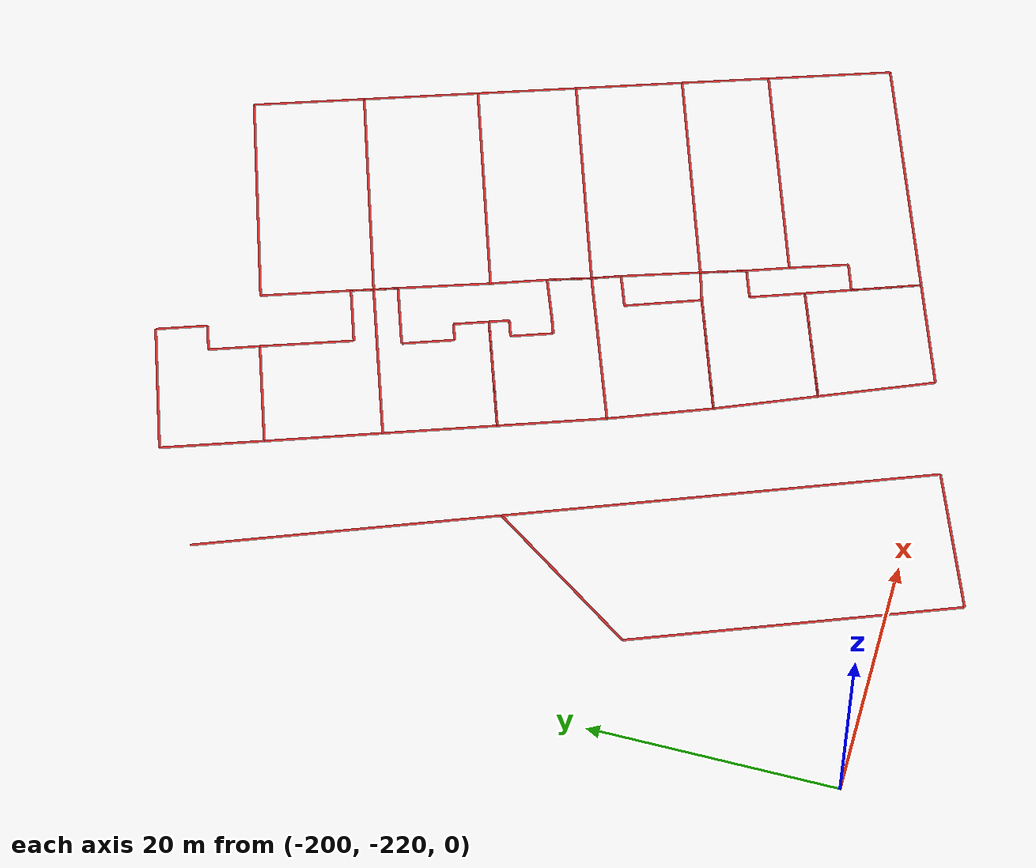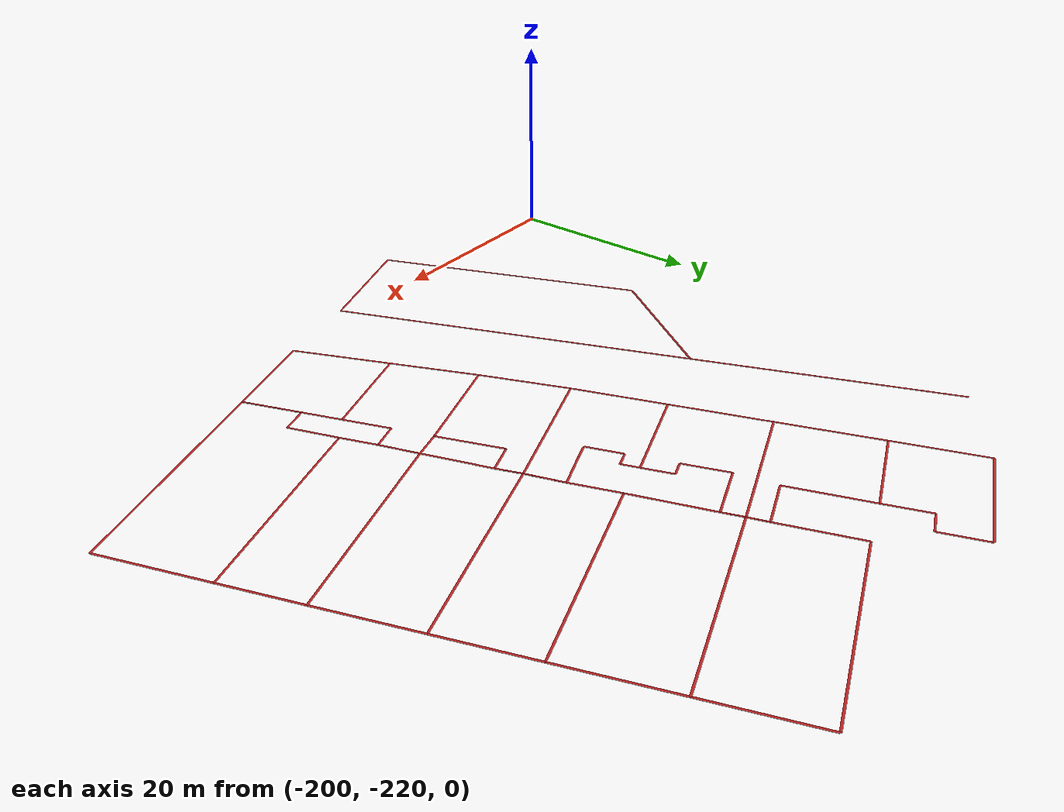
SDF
<sdf version="1.4">
 <world name="default">
  <include><uri>model://sun</uri></include>
  <model name="office_building_179269114">
   <static>true</static>
   <pose>-158.58759804 -211.600286094 0.0 0 0 0</pose>
   <link name="office_building_179269114_0">
    <collision name="office_building_179269114_0">
     <geometry><box><size>3.80377451925 0.2 0</size></box></geometry>
    </collision>
    <visual name="office_building_179269114_0">
     <geometry><box><size>3.80377451925 0.2 0</size></box></geometry>
     <material>
      <script><uri>file://media/materials/scripts/gazebo.material</uri><name>Gazebo/Red</name></script>
     </material>
    </visual>
    <pose>2.38501756788 2.86616251197 0 0 0 1.91679554039</pose>
   </link>
   <link name="office_building_179269114_1">
    <collision name="office_building_179269114_1">
     <geometry><box><size>5.71281149033 0.2 0</size></box></geometry>
    </collision>
    <visual name="office_building_179269114_1">
     <geometry><box><size>5.71281149033 0.2 0</size></box></geometry>
     <material>
      <script><uri>file://media/materials/scripts/gazebo.material</uri><name>Gazebo/Red</name></script>
     </material>
    </visual>
    <pose>4.00307972414 -1.60856797545 0 0 0 1.91841472612</pose>
   </link>
   <link name="office_building_179269114_2">
    <collision name="office_building_179269114_2">
     <geometry><box><size>9.4047843546 0.2 0</size></box></geometry>
    </collision>
    <visual name="office_building_179269114_2">
     <geometry><box><size>9.4047843546 0.2 0</size></box></geometry>
     <material>
      <script><uri>file://media/materials/scripts/gazebo.material</uri><name>Gazebo/Red</name></script>
     </material>
    </visual>
    <pose>0.545087686913 -5.86836891203 0 0 0 0.341367101498</pose>
   </link>
   <link name="office_building_179269114_3">
    <collision name="office_building_179269114_3">
     <geometry><box><size>9.54408434097 0.2 0</size></box></geometry>
    </collision>
    <visual name="office_building_179269114_3">
     <geometry><box><size>9.54408434097 0.2 0</size></box></geometry>
     <material>
      <script><uri>file://media/materials/scripts/gazebo.material</uri><name>Gazebo/Red</name></script>
     </material>
    </visual>
    <pose>-5.74309724983 -3.04677035066 0 0 0 -1.17106704474</pose>
   </link>
   <link name="office_building_179269114_4">
    <collision name="office_building_179269114_4">
     <geometry><box><size>9.90815662971 0.2 0</size></box></geometry>
    </collision>
    <visual name="office_building_179269114_4">
     <geometry><box><size>9.90815662971 0.2 0</size></box></geometry>
     <material>
      <script><uri>file://media/materials/scripts/gazebo.material</uri><name>Gazebo/Red</name></script>
     </material>
    </visual>
    <pose>-2.9301052548 3.00220640006 0 0 0 -2.8013762319</pose>
   </link>
  </model>
  <model name="office_building_179269113">
   <static>true</static>
   <pose>-146.258646722 -206.858492764 0.0 0 0 0</pose>
   <link name="office_building_179269113_0">
    <collision name="office_building_179269113_0">
     <geometry><box><size>10.2420200023 0.2 0</size></box></geometry>
    </collision>
    <visual name="office_building_179269113_0">
     <geometry><box><size>10.2420200023 0.2 0</size></box></geometry>
     <material>
      <script><uri>file://media/materials/scripts/gazebo.material</uri><name>Gazebo/Red</name></script>
     </material>
    </visual>
    <pose>11.2440742816 3.00155296333 0 0 0 1.89685270975</pose>
   </link>
   <link name="office_building_179269113_1">
    <collision name="office_building_179269113_1">
     <geometry><box><size>21.4752521521 0.2 0</size></box></geometry>
    </collision>
    <visual name="office_building_179269113_1">
     <geometry><box><size>21.4752521521 0.2 0</size></box></geometry>
     <material>
      <script><uri>file://media/materials/scripts/gazebo.material</uri><name>Gazebo/Red</name></script>
     </material>
    </visual>
    <pose>2.76578696284 -5.44278088781 0 0 0 0.341212890991</pose>
   </link>
   <link name="office_building_179269113_2">
    <collision name="office_building_179269113_2">
     <geometry><box><size>5.71281149033 0.2 0</size></box></geometry>
    </collision>
    <visual name="office_building_179269113_2">
     <geometry><box><size>5.71281149033 0.2 0</size></box></geometry>
     <material>
      <script><uri>file://media/materials/scripts/gazebo.material</uri><name>Gazebo/Red</name></script>
     </material>
    </visual>
    <pose>-8.32587159376 -6.35036130552 0 0 0 -1.22317792747</pose>
   </link>
   <link name="office_building_179269113_3">
    <collision name="office_building_179269113_3">
     <geometry><box><size>2.48809712996 0.2 0</size></box></geometry>
    </collision>
    <visual name="office_building_179269113_3">
     <geometry><box><size>2.48809712996 0.2 0</size></box></geometry>
     <material>
      <script><uri>file://media/materials/scripts/gazebo.material</uri><name>Gazebo/Red</name></script>
     </material>
    </visual>
    <pose>-8.12028304189 -3.26676211245 0 0 0 -2.81590645425</pose>
   </link>
   <link name="office_building_179269113_4">
    <collision name="office_building_179269113_4">
     <geometry><box><size>4.83956922077 0.2 0</size></box></geometry>
    </collision>
    <visual name="office_building_179269113_4">
     <geometry><box><size>4.83956922077 0.2 0</size></box></geometry>
     <material>
      <script><uri>file://media/materials/scripts/gazebo.material</uri><name>Gazebo/Red</name></script>
     </material>
    </visual>
    <pose>-7.72008526671 -0.577567519549 0 0 0 -1.2432683721</pose>
   </link>
   <link name="office_building_179269113_5">
    <collision name="office_building_179269113_5">
     <geometry><box><size>19.1149884492 0.2 0</size></box></geometry>
    </collision>
    <visual name="office_building_179269113_5">
     <geometry><box><size>19.1149884492 0.2 0</size></box></geometry>
     <material>
      <script><uri>file://media/materials/scripts/gazebo.material</uri><name>Gazebo/Red</name></script>
     </material>
    </visual>
    <pose>0.552613500159 4.78316713852 0 0 0 -2.81462751221</pose>
   </link>
  </model>
  <model name="office_building_179269112">
   <static>true</static>
   <pose>-160.410153428 -202.563512606 0.0 0 0 0</pose>
   <link name="office_building_179269112_0">
    <collision name="office_building_179269112_0">
     <geometry><box><size>2.69141899852 0.2 0</size></box></geometry>
    </collision>
    <visual name="office_building_179269112_0">
     <geometry><box><size>2.69141899852 0.2 0</size></box></geometry>
     <material>
      <script><uri>file://media/materials/scripts/gazebo.material</uri><name>Gazebo/Red</name></script>
     </material>
    </visual>
    <pose>2.02776983042 3.91911020143 0 0 0 -2.8524490779</pose>
   </link>
   <link name="office_building_179269112_1">
    <collision name="office_building_179269112_1">
     <geometry><box><size>3.76744716678 0.2 0</size></box></geometry>
    </collision>
    <visual name="office_building_179269112_1">
     <geometry><box><size>3.76744716678 0.2 0</size></box></geometry>
     <material>
      <script><uri>file://media/materials/scripts/gazebo.material</uri><name>Gazebo/Red</name></script>
     </material>
    </visual>
    <pose>3.89589713339 2.51004929694 0 0 0 1.88282280425</pose>
   </link>
   <link name="office_building_179269112_2">
    <collision name="office_building_179269112_2">
     <geometry><box><size>2.59086109966 0.2 0</size></box></geometry>
    </collision>
    <visual name="office_building_179269112_2">
     <geometry><box><size>2.59086109966 0.2 0</size></box></geometry>
     <material>
      <script><uri>file://media/materials/scripts/gazebo.material</uri><name>Gazebo/Red</name></script>
     </material>
    </visual>
    <pose>3.25104932531 0.290555016918 0 0 0 0.335679847231</pose>
   </link>
   <link name="office_building_179269112_3">
    <collision name="office_building_179269112_3">
     <geometry><box><size>4.5141329338 0.2 0</size></box></geometry>
    </collision>
    <visual name="office_building_179269112_3">
     <geometry><box><size>4.5141329338 0.2 0</size></box></geometry>
     <material>
      <script><uri>file://media/materials/scripts/gazebo.material</uri><name>Gazebo/Red</name></script>
     </material>
    </visual>
    <pose>2.79524705038 -2.25880470491 0 0 0 1.91767707317</pose>
   </link>
   <link name="office_building_179269112_4">
    <collision name="office_building_179269112_4">
     <geometry><box><size>9.90815662971 0.2 0</size></box></geometry>
    </collision>
    <visual name="office_building_179269112_4">
     <geometry><box><size>9.90815662971 0.2 0</size></box></geometry>
     <material>
      <script><uri>file://media/materials/scripts/gazebo.material</uri><name>Gazebo/Red</name></script>
     </material>
    </visual>
    <pose>-1.10754986639 -6.03456708746 0 0 0 0.340216421693</pose>
   </link>
   <link name="office_building_179269112_5">
    <collision name="office_building_179269112_5">
     <geometry><box><size>8.47237428882 0.2 0</size></box></geometry>
    </collision>
    <visual name="office_building_179269112_5">
     <geometry><box><size>8.47237428882 0.2 0</size></box></geometry>
     <material>
      <script><uri>file://media/materials/scripts/gazebo.material</uri><name>Gazebo/Red</name></script>
     </material>
    </visual>
    <pose>-7.42906704178 -3.78665068325 0 0 0 -1.17034894597</pose>
   </link>
   <link name="office_building_179269112_6">
    <collision name="office_building_179269112_6">
     <geometry><box><size>10.3973058498 0.2 0</size></box></geometry>
    </collision>
    <visual name="office_building_179269112_6">
     <geometry><box><size>10.3973058498 0.2 0</size></box></geometry>
     <material>
      <script><uri>file://media/materials/scripts/gazebo.material</uri><name>Gazebo/Red</name></script>
     </material>
    </visual>
    <pose>-4.17126928934 1.82490186911 0 0 0 -2.80631819883</pose>
   </link>
  </model>
  <model name="office_building_179269111">
   <static>true</static>
   <pose>-147.066465072 -198.085836433 0.0 0 0 0</pose>
   <link name="office_building_179269111_0">
    <collision name="office_building_179269111_0">
     <geometry><box><size>7.25916188026 0.2 0</size></box></geometry>
    </collision>
    <visual name="office_building_179269111_0">
     <geometry><box><size>7.25916188026 0.2 0</size></box></geometry>
     <material>
      <script><uri>file://media/materials/scripts/gazebo.material</uri><name>Gazebo/Red</name></script>
     </material>
    </visual>
    <pose>9.24947144025 2.51860573062 0 0 0 1.89671372867</pose>
   </link>
   <link name="office_building_179269111_1">
    <collision name="office_building_179269111_1">
     <geometry><box><size>19.1149884492 0.2 0</size></box></geometry>
    </collision>
    <visual name="office_building_179269111_1">
     <geometry><box><size>19.1149884492 0.2 0</size></box></geometry>
     <material>
      <script><uri>file://media/materials/scripts/gazebo.material</uri><name>Gazebo/Red</name></script>
     </material>
    </visual>
    <pose>1.36043185021 -3.98948919216 0 0 0 0.326965141382</pose>
   </link>
   <link name="office_building_179269111_2">
    <collision name="office_building_179269111_2">
     <geometry><box><size>3.50297739183 0.2 0</size></box></geometry>
    </collision>
    <visual name="office_building_179269111_2">
     <geometry><box><size>3.50297739183 0.2 0</size></box></geometry>
     <material>
      <script><uri>file://media/materials/scripts/gazebo.material</uri><name>Gazebo/Red</name></script>
     </material>
    </visual>
    <pose>-8.28011534986 -5.40973283405 0 0 0 -1.22758677592</pose>
   </link>
   <link name="office_building_179269111_3">
    <collision name="office_building_179269111_3">
     <geometry><box><size>3.76744716678 0.2 0</size></box></geometry>
    </collision>
    <visual name="office_building_179269111_3">
     <geometry><box><size>3.76744716678 0.2 0</size></box></geometry>
     <material>
      <script><uri>file://media/materials/scripts/gazebo.material</uri><name>Gazebo/Red</name></script>
     </material>
    </visual>
    <pose>-9.44779122287 -1.96762687629 0 0 0 -1.25876984934</pose>
   </link>
   <link name="office_building_179269111_4">
    <collision name="office_building_179269111_4">
     <geometry><box><size>19.1232197406 0.2 0</size></box></geometry>
    </collision>
    <visual name="office_building_179269111_4">
     <geometry><box><size>19.1232197406 0.2 0</size></box></geometry>
     <material>
      <script><uri>file://media/materials/scripts/gazebo.material</uri><name>Gazebo/Red</name></script>
     </material>
    </visual>
    <pose>-0.969356090388 2.89112710342 0 0 0 -2.81517052319</pose>
   </link>
  </model>
  <model name="office_building_179269110">
   <static>true</static>
   <pose>-163.22904703 -194.406942976 0.0 0 0 0</pose>
   <link name="office_building_179269110_0">
    <collision name="office_building_179269110_0">
     <geometry><box><size>2.41085128097 0.2 0</size></box></geometry>
    </collision>
    <visual name="office_building_179269110_0">
     <geometry><box><size>2.41085128097 0.2 0</size></box></geometry>
     <material>
      <script><uri>file://media/materials/scripts/gazebo.material</uri><name>Gazebo/Red</name></script>
     </material>
    </visual>
    <pose>3.70107787991 3.4320435103 0 0 0 1.91913979335</pose>
   </link>
   <link name="office_building_179269110_1">
    <collision name="office_building_179269110_1">
     <geometry><box><size>2.89046830438 0.2 0</size></box></geometry>
    </collision>
    <visual name="office_building_179269110_1">
     <geometry><box><size>2.89046830438 0.2 0</size></box></geometry>
     <material>
      <script><uri>file://media/materials/scripts/gazebo.material</uri><name>Gazebo/Red</name></script>
     </material>
    </visual>
    <pose>2.75597910825 1.80057277898 0 0 0 0.352119245449</pose>
   </link>
   <link name="office_building_179269110_2">
    <collision name="office_building_179269110_2">
     <geometry><box><size>6.3039480291 0.2 0</size></box></geometry>
    </collision>
    <visual name="office_building_179269110_2">
     <geometry><box><size>6.3039480291 0.2 0</size></box></geometry>
     <material>
      <script><uri>file://media/materials/scripts/gazebo.material</uri><name>Gazebo/Red</name></script>
     </material>
    </visual>
    <pose>2.4781176598 -1.65951719161 0 0 0 1.92008508344</pose>
   </link>
   <link name="office_building_179269110_3">
    <collision name="office_building_179269110_3">
     <geometry><box><size>10.3973058498 0.2 0</size></box></geometry>
    </collision>
    <visual name="office_building_179269110_3">
     <geometry><box><size>10.3973058498 0.2 0</size></box></geometry>
     <material>
      <script><uri>file://media/materials/scripts/gazebo.material</uri><name>Gazebo/Red</name></script>
     </material>
    </visual>
    <pose>-1.35237568706 -6.33166776098 0 0 0 0.335274454755</pose>
   </link>
   <link name="office_building_179269110_4">
    <collision name="office_building_179269110_4">
     <geometry><box><size>8.56463775001 0.2 0</size></box></geometry>
    </collision>
    <visual name="office_building_179269110_4">
     <geometry><box><size>8.56463775001 0.2 0</size></box></geometry>
     <material>
      <script><uri>file://media/materials/scripts/gazebo.material</uri><name>Gazebo/Red</name></script>
     </material>
    </visual>
    <pose>-7.82400374102 -4.05506162784 0 0 0 -1.1973166424</pose>
   </link>
   <link name="office_building_179269110_5">
    <collision name="office_building_179269110_5">
     <geometry><box><size>13.4961953465 0.2 0</size></box></geometry>
    </collision>
    <visual name="office_building_179269110_5">
     <geometry><box><size>13.4961953465 0.2 0</size></box></geometry>
     <material>
      <script><uri>file://media/materials/scripts/gazebo.material</uri><name>Gazebo/Red</name></script>
     </material>
    </visual>
    <pose>-3.0484116225 2.24855967286 0 0 0 -2.79118198114</pose>
   </link>
  </model>
  <model name="office_building_179269108">
   <static>true</static>
   <pose>-166.465565927 -186.813722646 0.0 0 0 0</pose>
   <link name="office_building_179269108_0">
    <collision name="office_building_179269108_0">
     <geometry><box><size>1.64877023192 0.2 0</size></box></geometry>
    </collision>
    <visual name="office_building_179269108_0">
     <geometry><box><size>1.64877023192 0.2 0</size></box></geometry>
     <material>
      <script><uri>file://media/materials/scripts/gazebo.material</uri><name>Gazebo/Red</name></script>
     </material>
    </visual>
    <pose>0.549194424391 3.12090783277 0 0 0 1.90762303549</pose>
   </link>
   <link name="office_building_179269108_1">
    <collision name="office_building_179269108_1">
     <geometry><box><size>1.50922294746 0.2 0</size></box></geometry>
    </collision>
    <visual name="office_building_179269108_1">
     <geometry><box><size>1.50922294746 0.2 0</size></box></geometry>
     <material>
      <script><uri>file://media/materials/scripts/gazebo.material</uri><name>Gazebo/Red</name></script>
     </material>
    </visual>
    <pose>0.11000967346 2.09183140052 0 0 0 0.339103110401</pose>
   </link>
   <link name="office_building_179269108_2">
    <collision name="office_building_179269108_2">
     <geometry><box><size>3.45128293593 0.2 0</size></box></geometry>
    </collision>
    <visual name="office_building_179269108_2">
     <geometry><box><size>3.45128293593 0.2 0</size></box></geometry>
     <material>
      <script><uri>file://media/materials/scripts/gazebo.material</uri><name>Gazebo/Red</name></script>
     </material>
    </visual>
    <pose>-0.0289188595489 0.212983059126 0 0 0 1.9090949167</pose>
   </link>
   <link name="office_building_179269108_3">
    <collision name="office_building_179269108_3">
     <geometry><box><size>1.50922291198 0.2 0</size></box></geometry>
    </collision>
    <visual name="office_building_179269108_3">
     <geometry><box><size>1.50922291198 0.2 0</size></box></geometry>
     <material>
      <script><uri>file://media/materials/scripts/gazebo.material</uri><name>Gazebo/Red</name></script>
     </material>
    </visual>
    <pose>1.25543026846 -1.16383485367 0 0 0 -2.80248900452</pose>
   </link>
   <link name="office_building_179269108_4">
    <collision name="office_building_179269108_4">
     <geometry><box><size>3.70648094865 0.2 0</size></box></geometry>
    </collision>
    <visual name="office_building_179269108_4">
     <geometry><box><size>3.70648094865 0.2 0</size></box></geometry>
     <material>
      <script><uri>file://media/materials/scripts/gazebo.material</uri><name>Gazebo/Red</name></script>
     </material>
    </visual>
    <pose>3.69612692638 -0.245841922979 0 0 0 -2.77343409545</pose>
   </link>
   <link name="office_building_179269108_5">
    <collision name="office_building_179269108_5">
     <geometry><box><size>3.62072660306 0.2 0</size></box></geometry>
    </collision>
    <visual name="office_building_179269108_5">
     <geometry><box><size>3.62072660306 0.2 0</size></box></geometry>
     <material>
      <script><uri>file://media/materials/scripts/gazebo.material</uri><name>Gazebo/Red</name></script>
     </material>
    </visual>
    <pose>5.97566006466 -1.30350705373 0 0 0 1.87975725774</pose>
   </link>
   <link name="office_building_179269108_6">
    <collision name="office_building_179269108_6">
     <geometry><box><size>13.4961953465 0.2 0</size></box></geometry>
    </collision>
    <visual name="office_building_179269108_6">
     <geometry><box><size>13.4961953465 0.2 0</size></box></geometry>
     <material>
      <script><uri>file://media/materials/scripts/gazebo.material</uri><name>Gazebo/Red</name></script>
     </material>
    </visual>
    <pose>0.188107274432 -5.34466065761 0 0 0 0.350410672454</pose>
   </link>
   <link name="office_building_179269108_7">
    <collision name="office_building_179269108_7">
     <geometry><box><size>8.78076432431 0.2 0</size></box></geometry>
    </collision>
    <visual name="office_building_179269108_7">
     <geometry><box><size>8.78076432431 0.2 0</size></box></geometry>
     <material>
      <script><uri>file://media/materials/scripts/gazebo.material</uri><name>Gazebo/Red</name></script>
     </material>
    </visual>
    <pose>-7.61784027542 -3.52345873255 0 0 0 -1.22988202192</pose>
   </link>
   <link name="office_building_179269108_8">
    <collision name="office_building_179269108_8">
     <geometry><box><size>9.92198371495 0.2 0</size></box></geometry>
    </collision>
    <visual name="office_building_179269108_8">
     <geometry><box><size>9.92198371495 0.2 0</size></box></geometry>
     <material>
      <script><uri>file://media/materials/scripts/gazebo.material</uri><name>Gazebo/Red</name></script>
     </material>
    </visual>
    <pose>-4.40450976565 2.25661168869 0 0 0 -2.80417202334</pose>
   </link>
  </model>
  <model name="office_building_179269103">
   <static>true</static>
   <pose>-158.149999125 -165.32246372 0.0 0 0 0</pose>
   <link name="office_building_179269103_0">
    <collision name="office_building_179269103_0">
     <geometry><box><size>9.19092388149 0.2 0</size></box></geometry>
    </collision>
    <visual name="office_building_179269103_0">
     <geometry><box><size>9.19092388149 0.2 0</size></box></geometry>
     <material>
      <script><uri>file://media/materials/scripts/gazebo.material</uri><name>Gazebo/Red</name></script>
     </material>
    </visual>
    <pose>9.1456967848 2.7743227444 0 0 0 1.89719577664</pose>
   </link>
   <link name="office_building_179269103_1">
    <collision name="office_building_179269103_1">
     <geometry><box><size>19.1126907342 0.2 0</size></box></geometry>
    </collision>
    <visual name="office_building_179269103_1">
     <geometry><box><size>19.1126907342 0.2 0</size></box></geometry>
     <material>
      <script><uri>file://media/materials/scripts/gazebo.material</uri><name>Gazebo/Red</name></script>
     </material>
    </visual>
    <pose>1.56799106915 -4.644463488 0 0 0 0.326604453991</pose>
   </link>
   <link name="office_building_179269103_2">
    <collision name="office_building_179269103_2">
     <geometry><box><size>1.83936546375 0.2 0</size></box></geometry>
    </collision>
    <visual name="office_building_179269103_2">
     <geometry><box><size>1.83936546375 0.2 0</size></box></geometry>
     <material>
      <script><uri>file://media/materials/scripts/gazebo.material</uri><name>Gazebo/Red</name></script>
     </material>
    </visual>
    <pose>-7.76675411338 -6.83554237296 0 0 0 -1.25734869278</pose>
   </link>
   <link name="office_building_179269103_3">
    <collision name="office_building_179269103_3">
     <geometry><box><size>7.35177905901 0.2 0</size></box></geometry>
    </collision>
    <visual name="office_building_179269103_3">
     <geometry><box><size>7.35177905901 0.2 0</size></box></geometry>
     <material>
      <script><uri>file://media/materials/scripts/gazebo.material</uri><name>Gazebo/Red</name></script>
     </material>
    </visual>
    <pose>-9.24022346596 -2.48269432635 0 0 0 -1.24115635767</pose>
   </link>
   <link name="office_building_179269103_4">
    <collision name="office_building_179269103_4">
     <geometry><box><size>19.112691812 0.2 0</size></box></geometry>
    </collision>
    <visual name="office_building_179269103_4">
     <geometry><box><size>19.112691812 0.2 0</size></box></geometry>
     <material>
      <script><uri>file://media/materials/scripts/gazebo.material</uri><name>Gazebo/Red</name></script>
     </material>
    </visual>
    <pose>-1.37894267142 4.06121962856 0 0 0 -2.8149896524</pose>
   </link>
  </model>
  <model name="office_building_179269104">
   <static>true</static>
   <pose>-172.78943896 -170.702478944 0.0 0 0 0</pose>
   <link name="office_building_179269104_0">
    <collision name="office_building_179269104_0">
     <geometry><box><size>7.58099481501 0.2 0</size></box></geometry>
    </collision>
    <visual name="office_building_179269104_0">
     <geometry><box><size>7.58099481501 0.2 0</size></box></geometry>
     <material>
      <script><uri>file://media/materials/scripts/gazebo.material</uri><name>Gazebo/Red</name></script>
     </material>
    </visual>
    <pose>0.756875128076 1.40198776926 0 0 0 1.90404746444</pose>
   </link>
   <link name="office_building_179269104_1">
    <collision name="office_building_179269104_1">
     <geometry><box><size>4.86282066509 0.2 0</size></box></geometry>
    </collision>
    <visual name="office_building_179269104_1">
     <geometry><box><size>4.86282066509 0.2 0</size></box></geometry>
     <material>
      <script><uri>file://media/materials/scripts/gazebo.material</uri><name>Gazebo/Red</name></script>
     </material>
    </visual>
    <pose>4.29296100152 -1.38031294356 0 0 0 -2.80646839815</pose>
   </link>
   <link name="office_building_179269104_2">
    <collision name="office_building_179269104_2">
     <geometry><box><size>1.83936546375 0.2 0</size></box></geometry>
    </collision>
    <visual name="office_building_179269104_2">
     <geometry><box><size>1.83936546375 0.2 0</size></box></geometry>
     <material>
      <script><uri>file://media/materials/scripts/gazebo.material</uri><name>Gazebo/Red</name></script>
     </material>
    </visual>
    <pose>6.87268572129 -1.45552714915 0 0 0 1.88424396081</pose>
   </link>
   <link name="office_building_179269104_3">
    <collision name="office_building_179269104_3">
     <geometry><box><size>13.7417554736 0.2 0</size></box></geometry>
    </collision>
    <visual name="office_building_179269104_3">
     <geometry><box><size>13.7417554736 0.2 0</size></box></geometry>
     <material>
      <script><uri>file://media/materials/scripts/gazebo.material</uri><name>Gazebo/Red</name></script>
     </material>
    </visual>
    <pose>0.673670825417 -4.60745631951 0 0 0 0.337794447277</pose>
   </link>
   <link name="office_building_179269104_4">
    <collision name="office_building_179269104_4">
     <geometry><box><size>9.43635804635 0.2 0</size></box></geometry>
    </collision>
    <visual name="office_building_179269104_4">
     <geometry><box><size>9.43635804635 0.2 0</size></box></geometry>
     <material>
      <script><uri>file://media/materials/scripts/gazebo.material</uri><name>Gazebo/Red</name></script>
     </material>
    </visual>
    <pose>-7.38803029712 -2.43843389709 0 0 0 -1.22952372962</pose>
   </link>
   <link name="office_building_179269104_5">
    <collision name="office_building_179269104_5">
     <geometry><box><size>8.99099480997 0.2 0</size></box></geometry>
    </collision>
    <visual name="office_building_179269104_5">
     <geometry><box><size>8.99099480997 0.2 0</size></box></geometry>
     <material>
      <script><uri>file://media/materials/scripts/gazebo.material</uri><name>Gazebo/Red</name></script>
     </material>
    </visual>
    <pose>-4.72510127469 3.49579598608 0 0 0 -2.80419631729</pose>
   </link>
  </model>
  <model name="office_building_179269105">
   <static>true</static>
   <pose>-155.456978559 -173.279959916 0.0 0 0 0</pose>
   <link name="office_building_179269105_0">
    <collision name="office_building_179269105_0">
     <geometry><box><size>9.50829288892 0.2 0</size></box></geometry>
    </collision>
    <visual name="office_building_179269105_0">
     <geometry><box><size>9.50829288892 0.2 0</size></box></geometry>
     <material>
      <script><uri>file://media/materials/scripts/gazebo.material</uri><name>Gazebo/Red</name></script>
     </material>
    </visual>
    <pose>9.449654684 1.87556147485 0 0 0 1.89701145267</pose>
   </link>
   <link name="office_building_179269105_1">
    <collision name="office_building_179269105_1">
     <geometry><box><size>19.1126896198 0.2 0</size></box></geometry>
    </collision>
    <visual name="office_building_179269105_1">
     <geometry><box><size>19.1126896198 0.2 0</size></box></geometry>
     <material>
      <script><uri>file://media/materials/scripts/gazebo.material</uri><name>Gazebo/Red</name></script>
     </material>
    </visual>
    <pose>1.92200379423 -5.6938255096 0 0 0 0.326605957154</pose>
   </link>
   <link name="office_building_179269105_2">
    <collision name="office_building_179269105_2">
     <geometry><box><size>7.53195180003 0.2 0</size></box></geometry>
    </collision>
    <visual name="office_building_179269105_2">
     <geometry><box><size>7.53195180003 0.2 0</size></box></geometry>
     <material>
      <script><uri>file://media/materials/scripts/gazebo.material</uri><name>Gazebo/Red</name></script>
     </material>
    </visual>
    <pose>-8.32462518692 -5.18859418261 0 0 0 -1.24776975834</pose>
   </link>
   <link name="office_building_179269105_3">
    <collision name="office_building_179269105_3">
     <geometry><box><size>1.976554028 0.2 0</size></box></geometry>
    </collision>
    <visual name="office_building_179269105_3">
     <geometry><box><size>1.976554028 0.2 0</size></box></geometry>
     <material>
      <script><uri>file://media/materials/scripts/gazebo.material</uri><name>Gazebo/Red</name></script>
     </material>
    </visual>
    <pose>-9.84814440078 -0.685158360622 0 0 0 -1.23242988278</pose>
   </link>
   <link name="office_building_179269105_4">
    <collision name="office_building_179269105_4">
     <geometry><box><size>19.1126907342 0.2 0</size></box></geometry>
    </collision>
    <visual name="office_building_179269105_4">
     <geometry><box><size>19.1126907342 0.2 0</size></box></geometry>
     <material>
      <script><uri>file://media/materials/scripts/gazebo.material</uri><name>Gazebo/Red</name></script>
     </material>
    </visual>
    <pose>-1.12502949708 3.31303270776 0 0 0 -2.8149881996</pose>
   </link>
  </model>
  <model name="office_building_179269106">
   <static>true</static>
   <pose>-169.154174991 -178.36196414 0.0 0 0 0</pose>
   <link name="office_building_179269106_0">
    <collision name="office_building_179269106_0">
     <geometry><box><size>1.976554028 0.2 0</size></box></geometry>
    </collision>
    <visual name="office_building_179269106_0">
     <geometry><box><size>1.976554028 0.2 0</size></box></geometry>
     <material>
      <script><uri>file://media/materials/scripts/gazebo.material</uri><name>Gazebo/Red</name></script>
     </material>
    </visual>
    <pose>3.8490520312 4.39684586315 0 0 0 1.90916277081</pose>
   </link>
   <link name="office_building_179269106_1">
    <collision name="office_building_179269106_1">
     <geometry><box><size>5.373335282 0.2 0</size></box></geometry>
    </collision>
    <visual name="office_building_179269106_1">
     <geometry><box><size>5.373335282 0.2 0</size></box></geometry>
     <material>
      <script><uri>file://media/materials/scripts/gazebo.material</uri><name>Gazebo/Red</name></script>
     </material>
    </visual>
    <pose>1.64189198046 2.57529912271 0 0 0 0.337370942869</pose>
   </link>
   <link name="office_building_179269106_2">
    <collision name="office_building_179269106_2">
     <geometry><box><size>4.28834279596 0.2 0</size></box></geometry>
    </collision>
    <visual name="office_building_179269106_2">
     <geometry><box><size>4.28834279596 0.2 0</size></box></geometry>
     <material>
      <script><uri>file://media/materials/scripts/gazebo.material</uri><name>Gazebo/Red</name></script>
     </material>
    </visual>
    <pose>-0.170489149425 -0.332666132063 0 0 0 1.91464804015</pose>
   </link>
   <link name="office_building_179269106_3">
    <collision name="office_building_179269106_3">
     <geometry><box><size>1.53258112387 0.2 0</size></box></geometry>
    </collision>
    <visual name="office_building_179269106_3">
     <geometry><box><size>1.53258112387 0.2 0</size></box></geometry>
     <material>
      <script><uri>file://media/materials/scripts/gazebo.material</uri><name>Gazebo/Red</name></script>
     </material>
    </visual>
    <pose>1.27510344951 -2.0967240661 0 0 0 -2.8029039411</pose>
   </link>
   <link name="office_building_179269106_4">
    <collision name="office_building_179269106_4">
     <geometry><box><size>2.87814877024 0.2 0</size></box></geometry>
    </collision>
    <visual name="office_building_179269106_4">
     <geometry><box><size>2.87814877024 0.2 0</size></box></geometry>
     <material>
      <script><uri>file://media/materials/scripts/gazebo.material</uri><name>Gazebo/Red</name></script>
     </material>
    </visual>
    <pose>2.48160563002 -3.19745642325 0 0 0 1.91362149619</pose>
   </link>
   <link name="office_building_179269106_5">
    <collision name="office_building_179269106_5">
     <geometry><box><size>9.92198371495 0.2 0</size></box></geometry>
    </collision>
    <visual name="office_building_179269106_5">
     <geometry><box><size>9.92198371495 0.2 0</size></box></geometry>
     <material>
      <script><uri>file://media/materials/scripts/gazebo.material</uri><name>Gazebo/Red</name></script>
     </material>
    </visual>
    <pose>-1.7159007021 -6.19514681736 0 0 0 0.337420630245</pose>
   </link>
   <link name="office_building_179269106_6">
    <collision name="office_building_179269106_6">
     <geometry><box><size>9.13559824201 0.2 0</size></box></geometry>
    </collision>
    <visual name="office_building_179269106_6">
     <geometry><box><size>9.13559824201 0.2 0</size></box></geometry>
     <material>
      <script><uri>file://media/materials/scripts/gazebo.material</uri><name>Gazebo/Red</name></script>
     </material>
    </visual>
    <pose>-7.92066692744 -3.53126619237 0 0 0 -1.23074659833</pose>
   </link>
   <link name="office_building_179269106_7">
    <collision name="office_building_179269106_7">
     <geometry><box><size>13.7417554736 0.2 0</size></box></geometry>
    </collision>
    <visual name="office_building_179269106_7">
     <geometry><box><size>13.7417554736 0.2 0</size></box></geometry>
     <material>
      <script><uri>file://media/materials/scripts/gazebo.material</uri><name>Gazebo/Red</name></script>
     </material>
    </visual>
    <pose>-2.96159314351 3.05202887621 0 0 0 -2.80379820631</pose>
   </link>
  </model>
  <model name="office_building_179269107">
   <static>true</static>
   <pose>-152.395113481 -182.298766648 0.0 0 0 0</pose>
   <link name="office_building_179269107_0">
    <collision name="office_building_179269107_0">
     <geometry><box><size>8.23200599121 0.2 0</size></box></geometry>
    </collision>
    <visual name="office_building_179269107_0">
     <geometry><box><size>8.23200599121 0.2 0</size></box></geometry>
     <material>
      <script><uri>file://media/materials/scripts/gazebo.material</uri><name>Gazebo/Red</name></script>
     </material>
    </visual>
    <pose>9.23465366407 2.4934818294 0 0 0 1.89812360556</pose>
   </link>
   <link name="office_building_179269107_1">
    <collision name="office_building_179269107_1">
     <geometry><box><size>19.114990349 0.2 0</size></box></geometry>
    </collision>
    <visual name="office_building_179269107_1">
     <geometry><box><size>19.114990349 0.2 0</size></box></geometry>
     <material>
      <script><uri>file://media/materials/scripts/gazebo.material</uri><name>Gazebo/Red</name></script>
     </material>
    </visual>
    <pose>1.50684324891 -4.47354393133 0 0 0 0.326962587979</pose>
   </link>
   <link name="office_building_179269107_2">
    <collision name="office_building_179269107_2">
     <geometry><box><size>3.62072660306 0.2 0</size></box></geometry>
    </collision>
    <visual name="office_building_179269107_2">
     <geometry><box><size>3.62072660306 0.2 0</size></box></geometry>
     <material>
      <script><uri>file://media/materials/scripts/gazebo.material</uri><name>Gazebo/Red</name></script>
     </material>
    </visual>
    <pose>-8.09479238103 -5.81846305168 0 0 0 -1.26183539585</pose>
   </link>
   <link name="office_building_179269107_3">
    <collision name="office_building_179269107_3">
     <geometry><box><size>4.61915143012 0.2 0</size></box></geometry>
    </collision>
    <visual name="office_building_179269107_3">
     <geometry><box><size>4.61915143012 0.2 0</size></box></geometry>
     <material>
      <script><uri>file://media/materials/scripts/gazebo.material</uri><name>Gazebo/Red</name></script>
     </material>
    </visual>
    <pose>-9.4181469331 -1.91740188002 0 0 0 -1.22957181548</pose>
   </link>
   <link name="office_building_179269107_4">
    <collision name="office_building_179269107_4">
     <geometry><box><size>19.1126896198 0.2 0</size></box></geometry>
    </collision>
    <visual name="office_building_179269107_4">
     <geometry><box><size>19.1126896198 0.2 0</size></box></geometry>
     <material>
      <script><uri>file://media/materials/scripts/gazebo.material</uri><name>Gazebo/Red</name></script>
     </material>
    </visual>
    <pose>-1.13986128304 3.32498122227 0 0 0 -2.81498669644</pose>
   </link>
  </model>
  <model name="office_building_164105875">
   <static>true</static>
   <pose>-190.018254847 -172.011765773 0.0 0 0 0</pose>
   <link name="office_building_164105875_0">
    <collision name="office_building_164105875_0">
     <geometry><box><size>13.1900556481 0.2 0</size></box></geometry>
    </collision>
    <visual name="office_building_164105875_0">
     <geometry><box><size>13.1900556481 0.2 0</size></box></geometry>
     <material>
      <script><uri>file://media/materials/scripts/gazebo.material</uri><name>Gazebo/Red</name></script>
     </material>
    </visual>
    <pose>0.0 0.0 0 0 0 1.94358591335</pose>
   </link>
  </model>
  <model name="office_building_164105874">
   <static>true</static>
   <pose>-186.233603683 -181.689160809 0.0 0 0 0</pose>
   <link name="office_building_164105874_0">
    <collision name="office_building_164105874_0">
     <geometry><box><size>11.3883031292 0.2 0</size></box></geometry>
    </collision>
    <visual name="office_building_164105874_0">
     <geometry><box><size>11.3883031292 0.2 0</size></box></geometry>
     <material>
      <script><uri>file://media/materials/scripts/gazebo.material</uri><name>Gazebo/Red</name></script>
     </material>
    </visual>
    <pose>0.691322115087 -1.76767347536 0 0 0 1.94359947247</pose>
   </link>
   <link name="office_building_164105874_1">
    <collision name="office_building_164105874_1">
     <geometry><box><size>11.3883031292 0.2 0</size></box></geometry>
    </collision>
    <visual name="office_building_164105874_1">
     <geometry><box><size>11.3883031292 0.2 0</size></box></geometry>
     <material>
      <script><uri>file://media/materials/scripts/gazebo.material</uri><name>Gazebo/Red</name></script>
     </material>
    </visual>
    <pose>0.691322115087 -1.76767347536 0 0 0 -1.19799318112</pose>
   </link>
  </model>
  <model name="office_building_164105879">
   <static>true</static>
   <pose>-192.420261781 -165.869717687 0.0 0 0 0</pose>
   <link name="office_building_164105879_0">
    <collision name="office_building_164105879_0">
     <geometry><box><size>0.0 0.2 0</size></box></geometry>
    </collision>
    <visual name="office_building_164105879_0">
     <geometry><box><size>0.0 0.2 0</size></box></geometry>
     <material>
      <script><uri>file://media/materials/scripts/gazebo.material</uri><name>Gazebo/Red</name></script>
     </material>
    </visual>
   </link>
  </model>
  <model name="office_building_164105878">
   <static>true</static>
   <pose>-185.057288585 -218.061364913 0.0 0 0 0</pose>
   <link name="office_building_164105878_0">
    <collision name="office_building_164105878_0">
     <geometry><box><size>16.4310366769 0.2 0</size></box></geometry>
    </collision>
    <visual name="office_building_164105878_0">
     <geometry><box><size>16.4310366769 0.2 0</size></box></geometry>
     <material>
      <script><uri>file://media/materials/scripts/gazebo.material</uri><name>Gazebo/Red</name></script>
     </material>
    </visual>
    <pose>0.0 0.0 0 0 0 1.9434866205</pose>
   </link>
  </model>
  <model name="office_building_179251561">
   <static>true</static>
   <pose>-184.034624705 -209.559883069 0.0 0 0 0</pose>
   <link name="office_building_179251561_0">
    <collision name="office_building_179251561_0">
     <geometry><box><size>10.3489991186 0.2 0</size></box></geometry>
    </collision>
    <visual name="office_building_179251561_0">
     <geometry><box><size>10.3489991186 0.2 0</size></box></geometry>
     <material>
      <script><uri>file://media/materials/scripts/gazebo.material</uri><name>Gazebo/Red</name></script>
     </material>
    </visual>
    <pose>-5.89905605472 3.96901844808 0 0 0 -1.19794265716</pose>
   </link>
   <link name="office_building_179251561_1">
    <collision name="office_building_179251561_1">
     <geometry><box><size>14.6293104092 0.2 0</size></box></geometry>
    </collision>
    <visual name="office_building_179251561_1">
     <geometry><box><size>14.6293104092 0.2 0</size></box></geometry>
     <material>
      <script><uri>file://media/materials/scripts/gazebo.material</uri><name>Gazebo/Red</name></script>
     </material>
    </visual>
    <pose>-3.6088424327 14.7940074415 0 0 0 -2.17826729757</pose>
   </link>
   <link name="office_building_179251561_2">
    <collision name="office_building_179251561_2">
     <geometry><box><size>34.9299248119 0.2 0</size></box></geometry>
    </collision>
    <visual name="office_building_179251561_2">
     <geometry><box><size>34.9299248119 0.2 0</size></box></geometry>
     <material>
      <script><uri>file://media/materials/scripts/gazebo.material</uri><name>Gazebo/Red</name></script>
     </material>
    </visual>
    <pose>6.92171993447 4.53246339546 0 0 0 1.94324239385</pose>
   </link>
   <link name="office_building_179251561_3">
    <collision name="office_building_179251561_3">
     <geometry><box><size>12.1406965628 0.2 0</size></box></geometry>
    </collision>
    <visual name="office_building_179251561_3">
     <geometry><box><size>12.1406965628 0.2 0</size></box></geometry>
     <material>
      <script><uri>file://media/materials/scripts/gazebo.material</uri><name>Gazebo/Red</name></script>
     </material>
    </visual>
    <pose>7.62296019496 -13.944057813 0 0 0 0.372443868238</pose>
   </link>
   <link name="office_building_179251561_4">
    <collision name="office_building_179251561_4">
     <geometry><box><size>16.4310366769 0.2 0</size></box></geometry>
    </collision>
    <visual name="office_building_179251561_4">
     <geometry><box><size>16.4310366769 0.2 0</size></box></geometry>
     <material>
      <script><uri>file://media/materials/scripts/gazebo.material</uri><name>Gazebo/Red</name></script>
     </material>
    </visual>
    <pose>-1.02266387976 -8.50148184354 0 0 0 -1.19810603309</pose>
   </link>
  </model>
  <model name="office_building_179269109">
   <static>true</static>
   <pose>-149.80030005 -189.957452532 0.0 0 0 0</pose>
   <link name="office_building_179269109_0">
    <collision name="office_building_179269109_0">
     <geometry><box><size>8.89748191667 0.2 0</size></box></geometry>
    </collision>
    <visual name="office_building_179269109_0">
     <geometry><box><size>8.89748191667 0.2 0</size></box></geometry>
     <material>
      <script><uri>file://media/materials/scripts/gazebo.material</uri><name>Gazebo/Red</name></script>
     </material>
    </visual>
    <pose>9.3921922817 2.04171794948 0 0 0 1.89780846465</pose>
   </link>
   <link name="office_building_179269109_1">
    <collision name="office_building_179269109_1">
     <geometry><box><size>19.1232197406 0.2 0</size></box></geometry>
    </collision>
    <visual name="office_building_179269109_1">
     <geometry><box><size>19.1232197406 0.2 0</size></box></geometry>
     <material>
      <script><uri>file://media/materials/scripts/gazebo.material</uri><name>Gazebo/Red</name></script>
     </material>
    </visual>
    <pose>1.76447888788 -5.23725679768 0 0 0 0.326422130404</pose>
   </link>
   <link name="office_building_179269109_2">
    <collision name="office_building_179269109_2">
     <geometry><box><size>6.47711808219 0.2 0</size></box></geometry>
    </collision>
    <visual name="office_building_179269109_2">
     <geometry><box><size>6.47711808219 0.2 0</size></box></geometry>
     <material>
      <script><uri>file://media/materials/scripts/gazebo.material</uri><name>Gazebo/Red</name></script>
     </material>
    </visual>
    <pose>-8.30422209911 -5.22685990232 0 0 0 -1.25299348391</pose>
   </link>
   <link name="office_building_179269109_3">
    <collision name="office_building_179269109_3">
     <geometry><box><size>2.41085128097 0.2 0</size></box></geometry>
    </collision>
    <visual name="office_building_179269109_3">
     <geometry><box><size>2.41085128097 0.2 0</size></box></geometry>
     <material>
      <script><uri>file://media/materials/scripts/gazebo.material</uri><name>Gazebo/Red</name></script>
     </material>
    </visual>
    <pose>-9.72766910034 -1.01744693394 0 0 0 -1.22245286024</pose>
   </link>
   <link name="office_building_179269109_4">
    <collision name="office_building_179269109_4">
     <geometry><box><size>19.114990349 0.2 0</size></box></geometry>
    </collision>
    <visual name="office_building_179269109_4">
     <geometry><box><size>19.114990349 0.2 0</size></box></geometry>
     <material>
      <script><uri>file://media/materials/scripts/gazebo.material</uri><name>Gazebo/Red</name></script>
     </material>
    </visual>
    <pose>-1.08797018258 3.18514195284 0 0 0 -2.81463006561</pose>
   </link>
  </model>
  <model name="office_building_179269102">
   <static>true</static>
   <pose>-176.351130214 -161.758092264 0.0 0 0 0</pose>
   <link name="office_building_179269102_0">
    <collision name="office_building_179269102_0">
     <geometry><box><size>11.2676953518 0.2 0</size></box></geometry>
    </collision>
    <visual name="office_building_179269102_0">
     <geometry><box><size>11.2676953518 0.2 0</size></box></geometry>
     <material>
      <script><uri>file://media/materials/scripts/gazebo.material</uri><name>Gazebo/Red</name></script>
     </material>
    </visual>
    <pose>-2.84826299329 2.79103790405 0 0 0 0.338011204649</pose>
   </link>
   <link name="office_building_179269102_1">
    <collision name="office_building_179269102_1">
     <geometry><box><size>8.3293514387 0.2 0</size></box></geometry>
    </collision>
    <visual name="office_building_179269102_1">
     <geometry><box><size>8.3293514387 0.2 0</size></box></geometry>
     <material>
      <script><uri>file://media/materials/scripts/gazebo.material</uri><name>Gazebo/Red</name></script>
     </material>
    </visual>
    <pose>-6.78438771915 -3.00697598352 0 0 0 1.90826882675</pose>
   </link>
   <link name="office_building_179269102_2">
    <collision name="office_building_179269102_2">
     <geometry><box><size>8.99099480997 0.2 0</size></box></geometry>
    </collision>
    <visual name="office_building_179269102_2">
     <geometry><box><size>8.99099480997 0.2 0</size></box></geometry>
     <material>
      <script><uri>file://media/materials/scripts/gazebo.material</uri><name>Gazebo/Red</name></script>
     </material>
    </visual>
    <pose>-1.16341002046 -5.44859069358 0 0 0 -2.80419631729</pose>
   </link>
   <link name="office_building_179269102_3">
    <collision name="office_building_179269102_3">
     <geometry><box><size>4.14437526911 0.2 0</size></box></geometry>
    </collision>
    <visual name="office_building_179269102_3">
     <geometry><box><size>4.14437526911 0.2 0</size></box></geometry>
     <material>
      <script><uri>file://media/materials/scripts/gazebo.material</uri><name>Gazebo/Red</name></script>
     </material>
    </visual>
    <pose>2.38916207888 -2.00631746523 0 0 0 -1.23160486524</pose>
   </link>
   <link name="office_building_179269102_4">
    <collision name="office_building_179269102_4">
     <geometry><box><size>2.28719284361 0.2 0</size></box></geometry>
    </collision>
    <visual name="office_building_179269102_4">
     <geometry><box><size>2.28719284361 0.2 0</size></box></geometry>
     <material>
      <script><uri>file://media/materials/scripts/gazebo.material</uri><name>Gazebo/Red</name></script>
     </material>
    </visual>
    <pose>2.77827338322 0.327909532703 0 0 0 -2.80277065854</pose>
   </link>
   <link name="office_building_179269102_5">
    <collision name="office_building_179269102_5">
     <geometry><box><size>4.18865183902 0.2 0</size></box></geometry>
    </collision>
    <visual name="office_building_179269102_5">
     <geometry><box><size>4.18865183902 0.2 0</size></box></geometry>
     <material>
      <script><uri>file://media/materials/scripts/gazebo.material</uri><name>Gazebo/Red</name></script>
     </material>
    </visual>
    <pose>3.16182600974 2.68365019192 0 0 0 -1.23251979487</pose>
   </link>
  </model>
 </world>
</sdf>
